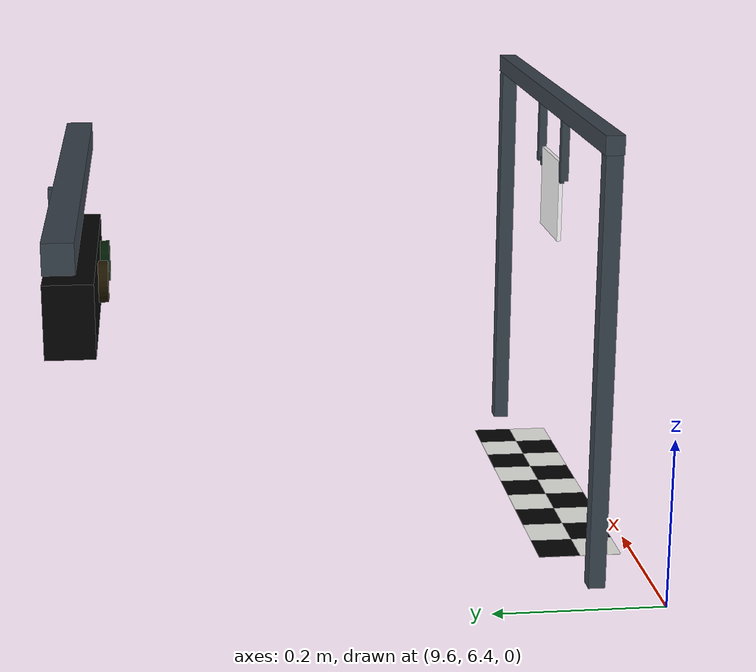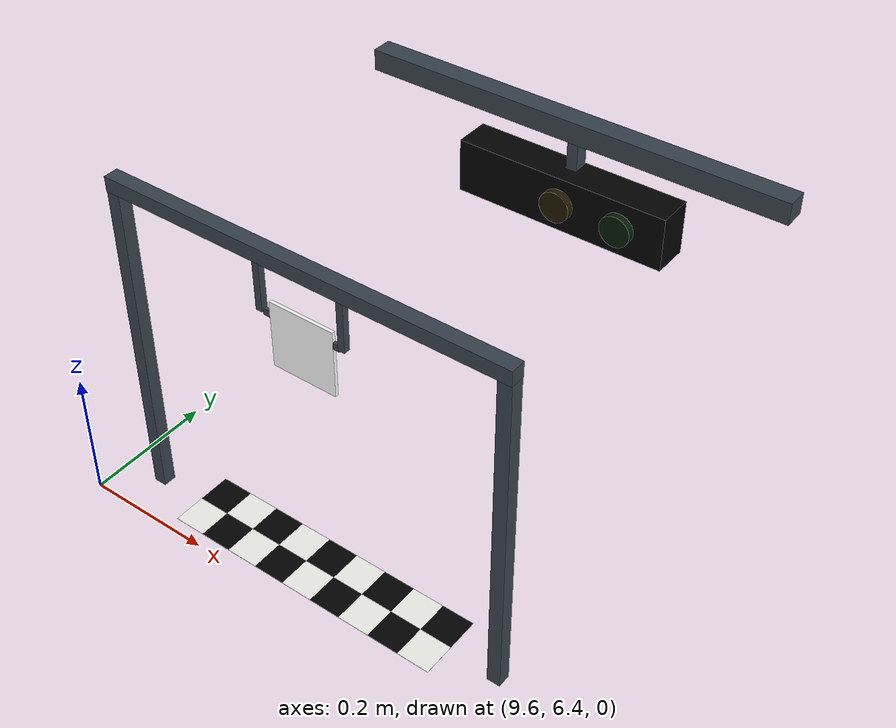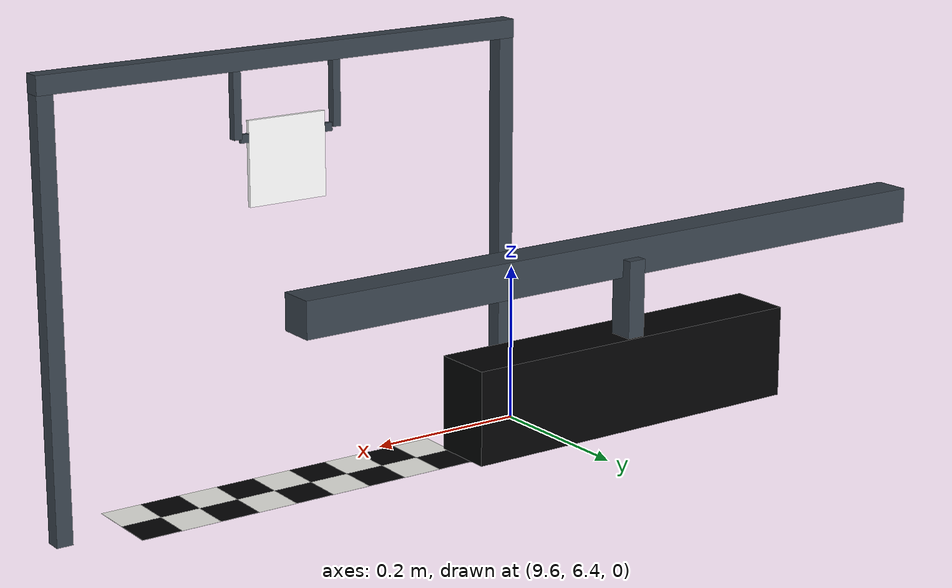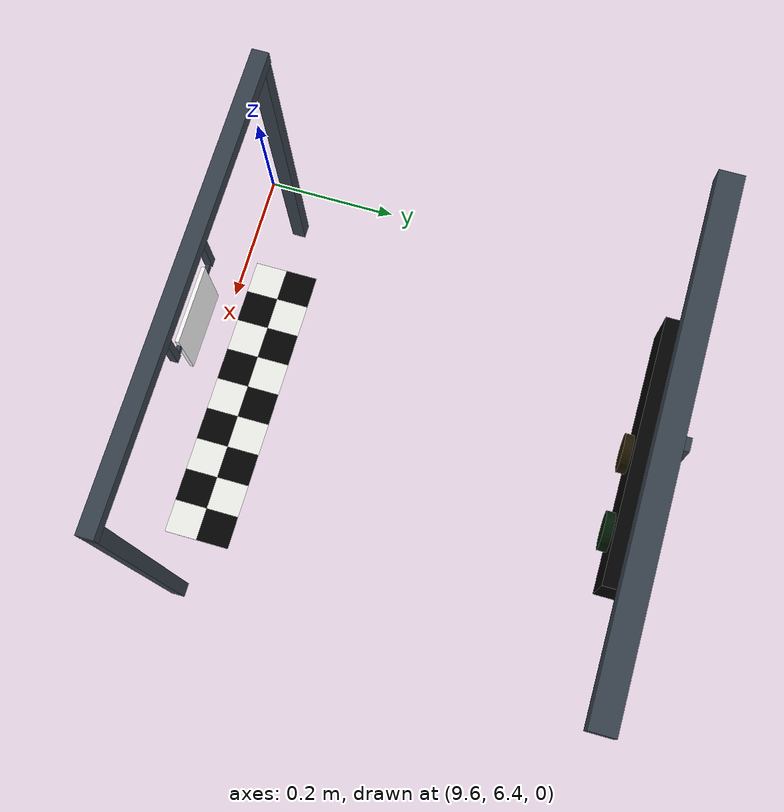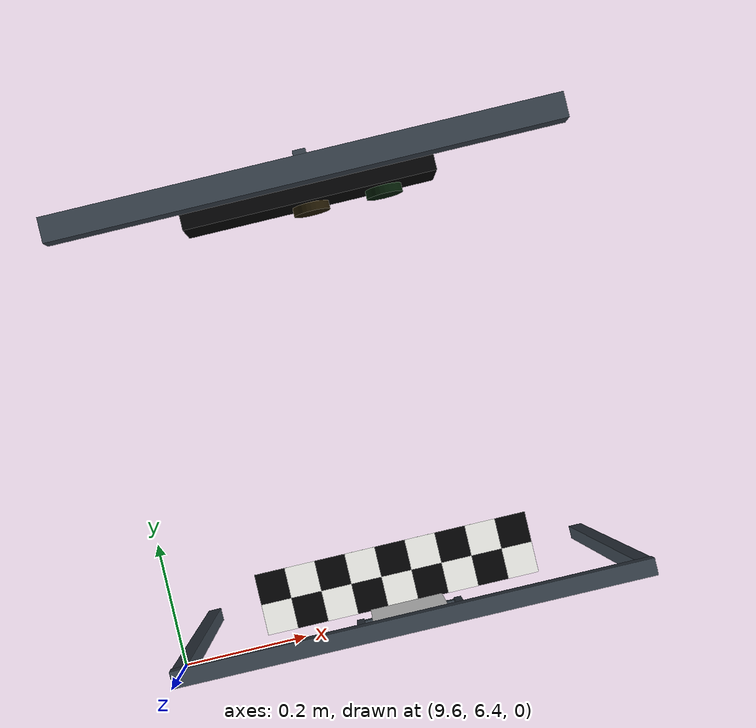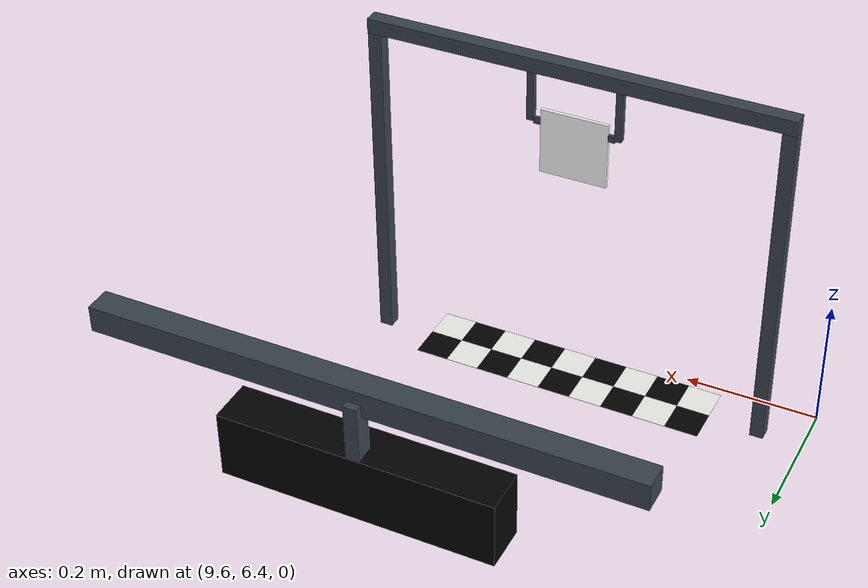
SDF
<sdf version="1.8">
 <world name="it_arena_track">
  <model name="it_arena_track_static">
   <static>true</static>
   <link name="aruco_0">
    <pose>9.9660 6.4665 0.4000 0 0 -1.57218</pose>
    <visual name="aruco_0_vis">
     <geometry><box><size>0.0050 0.1000 0.1000</size></box></geometry>
     <material>
      <diffuse>1 1 1 1</diffuse>
      <pbr>
       <metal>
        <albedo_map>/mnt/c/Users/Jinhyeong/Documents/ChatGPT/IT ARENA local/src/arena_gazebo/worlds/it_arena_official/aruco/aruco_id0.png</albedo_map>
       </metal>
      </pbr>
     </material>
    </visual>
    <collision name="aruco_0_col"><geometry><box><size>0.0050 0.1000 0.1000</size></box></geometry></collision>
   </link>
   <link name="finish_line_paint">
    <pose>9.9660000000 6.4665000000 0.0038000000 0.0000000000 0.0000000000 1.5694141806</pose>
    <visual name="checker_0_0">
     <pose>-0.0250000000 -0.2000000000 0.0000000000 0.0000000000 0.0000000000 0.0000000000</pose>
     <geometry><box><size>0.0500000000 0.0500000000 0.0004000000</size></box></geometry>
     <material>
      <ambient>0.96 0.96 0.94 1</ambient>
      <diffuse>0.96 0.96 0.94 1</diffuse>
      <specular>0 0 0 1</specular>
     </material>
     <cast_shadows>false</cast_shadows>
    </visual>
    <visual name="checker_0_1">
     <pose>-0.0250000000 -0.1500000000 0.0000000000 0.0000000000 0.0000000000 0.0000000000</pose>
     <geometry><box><size>0.0500000000 0.0500000000 0.0004000000</size></box></geometry>
     <material>
      <ambient>0.008 0.010 0.014 1</ambient>
      <diffuse>0.008 0.010 0.014 1</diffuse>
      <specular>0 0 0 1</specular>
     </material>
     <cast_shadows>false</cast_shadows>
    </visual>
    <visual name="checker_0_2">
     <pose>-0.0250000000 -0.1000000000 0.0000000000 0.0000000000 0.0000000000 0.0000000000</pose>
     <geometry><box><size>0.0500000000 0.0500000000 0.0004000000</size></box></geometry>
     <material>
      <ambient>0.96 0.96 0.94 1</ambient>
      <diffuse>0.96 0.96 0.94 1</diffuse>
      <specular>0 0 0 1</specular>
     </material>
     <cast_shadows>false</cast_shadows>
    </visual>
    <visual name="checker_0_3">
     <pose>-0.0250000000 -0.0500000000 0.0000000000 0.0000000000 0.0000000000 0.0000000000</pose>
     <geometry><box><size>0.0500000000 0.0500000000 0.0004000000</size></box></geometry>
     <material>
      <ambient>0.008 0.010 0.014 1</ambient>
      <diffuse>0.008 0.010 0.014 1</diffuse>
      <specular>0 0 0 1</specular>
     </material>
     <cast_shadows>false</cast_shadows>
    </visual>
    <visual name="checker_0_4">
     <pose>-0.0250000000 0.0000000000 0.0000000000 0.0000000000 0.0000000000 0.0000000000</pose>
     <geometry><box><size>0.0500000000 0.0500000000 0.0004000000</size></box></geometry>
     <material>
      <ambient>0.96 0.96 0.94 1</ambient>
      <diffuse>0.96 0.96 0.94 1</diffuse>
      <specular>0 0 0 1</specular>
     </material>
     <cast_shadows>false</cast_shadows>
    </visual>
    <visual name="checker_0_5">
     <pose>-0.0250000000 0.0500000000 0.0000000000 0.0000000000 0.0000000000 0.0000000000</pose>
     <geometry><box><size>0.0500000000 0.0500000000 0.0004000000</size></box></geometry>
     <material>
      <ambient>0.008 0.010 0.014 1</ambient>
      <diffuse>0.008 0.010 0.014 1</diffuse>
      <specular>0 0 0 1</specular>
     </material>
     <cast_shadows>false</cast_shadows>
    </visual>
    <visual name="checker_0_6">
     <pose>-0.0250000000 0.1000000000 0.0000000000 0.0000000000 0.0000000000 0.0000000000</pose>
     <geometry><box><size>0.0500000000 0.0500000000 0.0004000000</size></box></geometry>
     <material>
      <ambient>0.96 0.96 0.94 1</ambient>
      <diffuse>0.96 0.96 0.94 1</diffuse>
      <specular>0 0 0 1</specular>
     </material>
     <cast_shadows>false</cast_shadows>
    </visual>
    <visual name="checker_0_7">
     <pose>-0.0250000000 0.1500000000 0.0000000000 0.0000000000 0.0000000000 0.0000000000</pose>
     <geometry><box><size>0.0500000000 0.0500000000 0.0004000000</size></box></geometry>
     <material>
      <ambient>0.008 0.010 0.014 1</ambient>
      <diffuse>0.008 0.010 0.014 1</diffuse>
      <specular>0 0 0 1</specular>
     </material>
     <cast_shadows>false</cast_shadows>
    </visual>
    <visual name="checker_0_8">
     <pose>-0.0250000000 0.2000000000 0.0000000000 0.0000000000 0.0000000000 0.0000000000</pose>
     <geometry><box><size>0.0500000000 0.0500000000 0.0004000000</size></box></geometry>
     <material>
      <ambient>0.96 0.96 0.94 1</ambient>
      <diffuse>0.96 0.96 0.94 1</diffuse>
      <specular>0 0 0 1</specular>
     </material>
     <cast_shadows>false</cast_shadows>
    </visual>
    <visual name="checker_1_0">
     <pose>0.0250000000 -0.2000000000 0.0000000000 0.0000000000 0.0000000000 0.0000000000</pose>
     <geometry><box><size>0.0500000000 0.0500000000 0.0004000000</size></box></geometry>
     <material>
      <ambient>0.008 0.010 0.014 1</ambient>
      <diffuse>0.008 0.010 0.014 1</diffuse>
      <specular>0 0 0 1</specular>
     </material>
     <cast_shadows>false</cast_shadows>
    </visual>
    <visual name="checker_1_1">
     <pose>0.0250000000 -0.1500000000 0.0000000000 0.0000000000 0.0000000000 0.0000000000</pose>
     <geometry><box><size>0.0500000000 0.0500000000 0.0004000000</size></box></geometry>
     <material>
      <ambient>0.96 0.96 0.94 1</ambient>
      <diffuse>0.96 0.96 0.94 1</diffuse>
      <specular>0 0 0 1</specular>
     </material>
     <cast_shadows>false</cast_shadows>
    </visual>
    <visual name="checker_1_2">
     <pose>0.0250000000 -0.1000000000 0.0000000000 0.0000000000 0.0000000000 0.0000000000</pose>
     <geometry><box><size>0.0500000000 0.0500000000 0.0004000000</size></box></geometry>
     <material>
      <ambient>0.008 0.010 0.014 1</ambient>
      <diffuse>0.008 0.010 0.014 1</diffuse>
      <specular>0 0 0 1</specular>
     </material>
     <cast_shadows>false</cast_shadows>
    </visual>
    <visual name="checker_1_3">
     <pose>0.0250000000 -0.0500000000 0.0000000000 0.0000000000 0.0000000000 0.0000000000</pose>
     <geometry><box><size>0.0500000000 0.0500000000 0.0004000000</size></box></geometry>
     <material>
      <ambient>0.96 0.96 0.94 1</ambient>
      <diffuse>0.96 0.96 0.94 1</diffuse>
      <specular>0 0 0 1</specular>
     </material>
     <cast_shadows>false</cast_shadows>
    </visual>
    <visual name="checker_1_4">
     <pose>0.0250000000 0.0000000000 0.0000000000 0.0000000000 0.0000000000 0.0000000000</pose>
     <geometry><box><size>0.0500000000 0.0500000000 0.0004000000</size></box></geometry>
     <material>
      <ambient>0.008 0.010 0.014 1</ambient>
      <diffuse>0.008 0.010 0.014 1</diffuse>
      <specular>0 0 0 1</specular>
     </material>
     <cast_shadows>false</cast_shadows>
    </visual>
    <visual name="checker_1_5">
     <pose>0.0250000000 0.0500000000 0.0000000000 0.0000000000 0.0000000000 0.0000000000</pose>
     <geometry><box><size>0.0500000000 0.0500000000 0.0004000000</size></box></geometry>
     <material>
      <ambient>0.96 0.96 0.94 1</ambient>
      <diffuse>0.96 0.96 0.94 1</diffuse>
      <specular>0 0 0 1</specular>
     </material>
     <cast_shadows>false</cast_shadows>
    </visual>
    <visual name="checker_1_6">
     <pose>0.0250000000 0.1000000000 0.0000000000 0.0000000000 0.0000000000 0.0000000000</pose>
     <geometry><box><size>0.0500000000 0.0500000000 0.0004000000</size></box></geometry>
     <material>
      <ambient>0.008 0.010 0.014 1</ambient>
      <diffuse>0.008 0.010 0.014 1</diffuse>
      <specular>0 0 0 1</specular>
     </material>
     <cast_shadows>false</cast_shadows>
    </visual>
    <visual name="checker_1_7">
     <pose>0.0250000000 0.1500000000 0.0000000000 0.0000000000 0.0000000000 0.0000000000</pose>
     <geometry><box><size>0.0500000000 0.0500000000 0.0004000000</size></box></geometry>
     <material>
      <ambient>0.96 0.96 0.94 1</ambient>
      <diffuse>0.96 0.96 0.94 1</diffuse>
      <specular>0 0 0 1</specular>
     </material>
     <cast_shadows>false</cast_shadows>
    </visual>
    <visual name="checker_1_8">
     <pose>0.0250000000 0.2000000000 0.0000000000 0.0000000000 0.0000000000 0.0000000000</pose>
     <geometry><box><size>0.0500000000 0.0500000000 0.0004000000</size></box></geometry>
     <material>
      <ambient>0.008 0.010 0.014 1</ambient>
      <diffuse>0.008 0.010 0.014 1</diffuse>
      <specular>0 0 0 1</specular>
     </material>
     <cast_shadows>false</cast_shadows>
    </visual>
   </link>
   <link name="tl_beam">
    <pose>9.9641998749 7.0664970600 0.0000000000 0.0000000000 0.0000000000 1.5737961678</pose>
    <visual name="cross_track_beam">
     <pose>0.0000000000 0.0000000000 0.4200000000 0.0000000000 0.0000000000 0.0000000000</pose>
     <geometry><box><size>0.0350000000 0.7100000000 0.0350000000</size></box></geometry>
     <material>
      <ambient>0.22 0.26 0.30 1</ambient>
      <diffuse>0.22 0.26 0.30 1</diffuse>
      <specular>0 0 0 1</specular>
     </material>
     <cast_shadows>false</cast_shadows>
    </visual>
    <collision name="cross_track_beam_collision">
     <pose>0.0000000000 0.0000000000 0.4200000000 0.0000000000 0.0000000000 0.0000000000</pose>
     <geometry><box><size>0.0350000000 0.7100000000 0.0350000000</size></box></geometry>
    </collision>
    <visual name="housing">
     <pose>0.0000000000 0.0000000000 0.3000000000 0.0000000000 0.0000000000 0.0000000000</pose>
     <geometry><box><size>0.0600000000 0.3600000000 0.0900000000</size></box></geometry>
     <material>
      <ambient>0.008 0.010 0.014 1</ambient>
      <diffuse>0.008 0.010 0.014 1</diffuse>
      <specular>0 0 0 1</specular>
     </material>
     <cast_shadows>false</cast_shadows>
    </visual>
    <collision name="housing_collision">
     <pose>0.0000000000 0.0000000000 0.3000000000 0.0000000000 0.0000000000 0.0000000000</pose>
     <geometry><box><size>0.0600000000 0.3600000000 0.0900000000</size></box></geometry>
    </collision>
    <visual name="hanger">
     <pose>0.0150000000 0.0000000000 0.3600000000 0.0000000000 0.0000000000 0.0000000000</pose>
     <geometry><box><size>0.0250000000 0.0180000000 0.1200000000</size></box></geometry>
     <material>
      <ambient>0.22 0.26 0.30 1</ambient>
      <diffuse>0.22 0.26 0.30 1</diffuse>
      <specular>0 0 0 1</specular>
     </material>
     <cast_shadows>false</cast_shadows>
    </visual>
    <collision name="hanger_collision">
     <pose>0.0150000000 0.0000000000 0.3600000000 0.0000000000 0.0000000000 0.0000000000</pose>
     <geometry><box><size>0.0250000000 0.0180000000 0.1200000000</size></box></geometry>
    </collision>
   </link>
   <link name="lamp_yellow">
    <pose>9.9643078690 7.0304972219 0.3000000000 0.0000000000 0.0000000000 1.5737961678</pose>
    <visual name="lamp_yellow_vis">
     <pose>0.0000000000 0.0000000000 0.0000000000 0.0000000000 1.5707963268 0.0000000000</pose>
     <geometry><cylinder><radius>0.026</radius><length>.012</length></cylinder></geometry>
     <material>
      <ambient>0.12 0.085 0.004 1</ambient>
      <diffuse>0.12 0.085 0.004 1</diffuse>
      <specular>0 0 0 1</specular>
      <emissive>0 0 0 1</emissive>
     </material>
     <cast_shadows>false</cast_shadows>
    </visual>
   </link>
   <link name="lamp_green">
    <pose>10.0693073966 7.0308122048 0.3000000000 0.0000000000 0.0000000000 1.5737961678</pose>
    <visual name="lamp_green_vis">
     <pose>0.0000000000 0.0000000000 0.0000000000 0.0000000000 1.5707963268 0.0000000000</pose>
     <geometry><cylinder><radius>0.026</radius><length>.012</length></cylinder></geometry>
     <material>
      <ambient>0.005 0.10 0.016 1</ambient>
      <diffuse>0.005 0.10 0.016 1</diffuse>
      <specular>0 0 0 1</specular>
      <emissive>0 0 0 1</emissive>
     </material>
     <cast_shadows>false</cast_shadows>
    </visual>
   </link>
   <link name="team_gantry_support_0">
    <pose>9.9660000000 6.4665000000 0.0000000000 0.0000000000 0.0000000000 -1.5721800000</pose>
    <visual name="right_post">
     <pose>0.0000000000 -0.3000000000 0.2600000000 0.0000000000 0.0000000000 0.0000000000</pose>
     <geometry><box><size>0.0200000000 0.0200000000 0.5200000000</size></box></geometry>
     <material>
      <ambient>0.22 0.26 0.30 1</ambient>
      <diffuse>0.22 0.26 0.30 1</diffuse>
      <specular>0 0 0 1</specular>
     </material>
     <cast_shadows>false</cast_shadows>
    </visual>
    <collision name="right_post_collision">
     <pose>0.0000000000 -0.3000000000 0.2600000000 0.0000000000 0.0000000000 0.0000000000</pose>
     <geometry><box><size>0.0200000000 0.0200000000 0.5200000000</size></box></geometry>
    </collision>
    <visual name="right_hanger">
     <pose>0.0000000000 -0.0650000000 0.4750000000 0.0000000000 0.0000000000 0.0000000000</pose>
     <geometry><box><size>0.0100000000 0.0100000000 0.0900000000</size></box></geometry>
     <material>
      <ambient>0.22 0.26 0.30 1</ambient>
      <diffuse>0.22 0.26 0.30 1</diffuse>
      <specular>0 0 0 1</specular>
     </material>
     <cast_shadows>false</cast_shadows>
    </visual>
    <collision name="right_hanger_collision">
     <pose>0.0000000000 -0.0650000000 0.4750000000 0.0000000000 0.0000000000 0.0000000000</pose>
     <geometry><box><size>0.0100000000 0.0100000000 0.0900000000</size></box></geometry>
    </collision>
    <visual name="right_edge_clamp">
     <pose>0.0000000000 -0.0550000000 0.4300000000 0.0000000000 0.0000000000 0.0000000000</pose>
     <geometry><box><size>0.0050000000 0.0100000000 0.0100000000</size></box></geometry>
     <material>
      <ambient>0.22 0.26 0.30 1</ambient>
      <diffuse>0.22 0.26 0.30 1</diffuse>
      <specular>0 0 0 1</specular>
     </material>
     <cast_shadows>false</cast_shadows>
    </visual>
    <collision name="right_edge_clamp_collision">
     <pose>0.0000000000 -0.0550000000 0.4300000000 0.0000000000 0.0000000000 0.0000000000</pose>
     <geometry><box><size>0.0050000000 0.0100000000 0.0100000000</size></box></geometry>
    </collision>
    <visual name="left_post">
     <pose>0.0000000000 0.3000000000 0.2600000000 0.0000000000 0.0000000000 0.0000000000</pose>
     <geometry><box><size>0.0200000000 0.0200000000 0.5200000000</size></box></geometry>
     <material>
      <ambient>0.22 0.26 0.30 1</ambient>
      <diffuse>0.22 0.26 0.30 1</diffuse>
      <specular>0 0 0 1</specular>
     </material>
     <cast_shadows>false</cast_shadows>
    </visual>
    <collision name="left_post_collision">
     <pose>0.0000000000 0.3000000000 0.2600000000 0.0000000000 0.0000000000 0.0000000000</pose>
     <geometry><box><size>0.0200000000 0.0200000000 0.5200000000</size></box></geometry>
    </collision>
    <visual name="left_hanger">
     <pose>0.0000000000 0.0650000000 0.4750000000 0.0000000000 0.0000000000 0.0000000000</pose>
     <geometry><box><size>0.0100000000 0.0100000000 0.0900000000</size></box></geometry>
     <material>
      <ambient>0.22 0.26 0.30 1</ambient>
      <diffuse>0.22 0.26 0.30 1</diffuse>
      <specular>0 0 0 1</specular>
     </material>
     <cast_shadows>false</cast_shadows>
    </visual>
    <collision name="left_hanger_collision">
     <pose>0.0000000000 0.0650000000 0.4750000000 0.0000000000 0.0000000000 0.0000000000</pose>
     <geometry><box><size>0.0100000000 0.0100000000 0.0900000000</size></box></geometry>
    </collision>
    <visual name="left_edge_clamp">
     <pose>0.0000000000 0.0550000000 0.4300000000 0.0000000000 0.0000000000 0.0000000000</pose>
     <geometry><box><size>0.0050000000 0.0100000000 0.0100000000</size></box></geometry>
     <material>
      <ambient>0.22 0.26 0.30 1</ambient>
      <diffuse>0.22 0.26 0.30 1</diffuse>
      <specular>0 0 0 1</specular>
     </material>
     <cast_shadows>false</cast_shadows>
    </visual>
    <collision name="left_edge_clamp_collision">
     <pose>0.0000000000 0.0550000000 0.4300000000 0.0000000000 0.0000000000 0.0000000000</pose>
     <geometry><box><size>0.0050000000 0.0100000000 0.0100000000</size></box></geometry>
    </collision>
    <visual name="overhead_beam">
     <pose>0.0000000000 0.0000000000 0.5200000000 0.0000000000 0.0000000000 0.0000000000</pose>
     <geometry><box><size>0.0220000000 0.6200000000 0.0220000000</size></box></geometry>
     <material>
      <ambient>0.22 0.26 0.30 1</ambient>
      <diffuse>0.22 0.26 0.30 1</diffuse>
      <specular>0 0 0 1</specular>
     </material>
     <cast_shadows>false</cast_shadows>
    </visual>
    <collision name="overhead_beam_collision">
     <pose>0.0000000000 0.0000000000 0.5200000000 0.0000000000 0.0000000000 0.0000000000</pose>
     <geometry><box><size>0.0220000000 0.6200000000 0.0220000000</size></box></geometry>
    </collision>
   </link>
  </model>
 </world>
</sdf>
